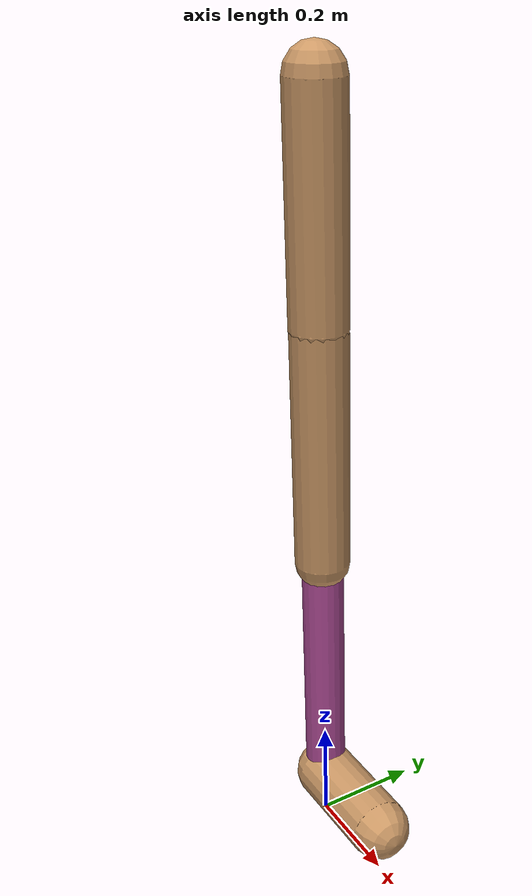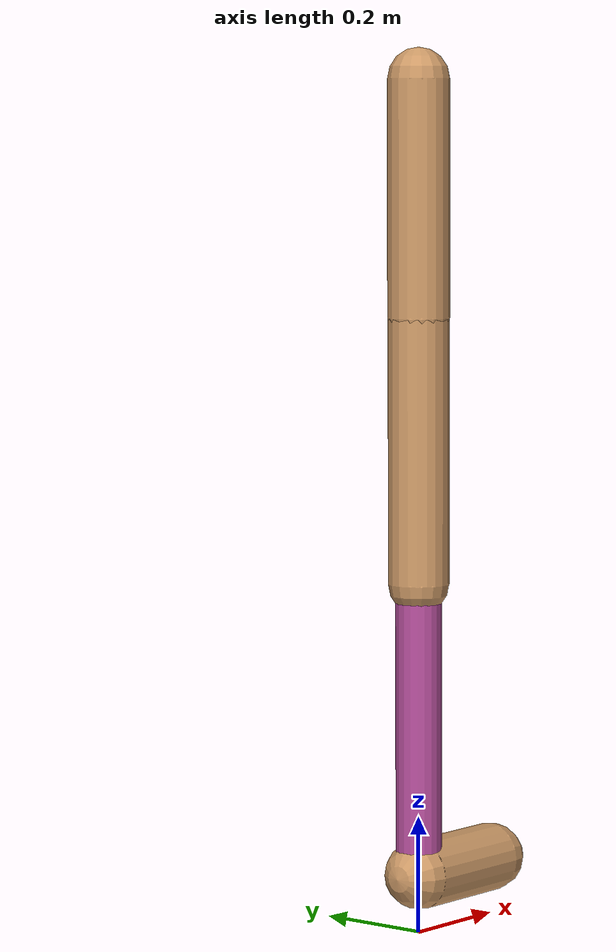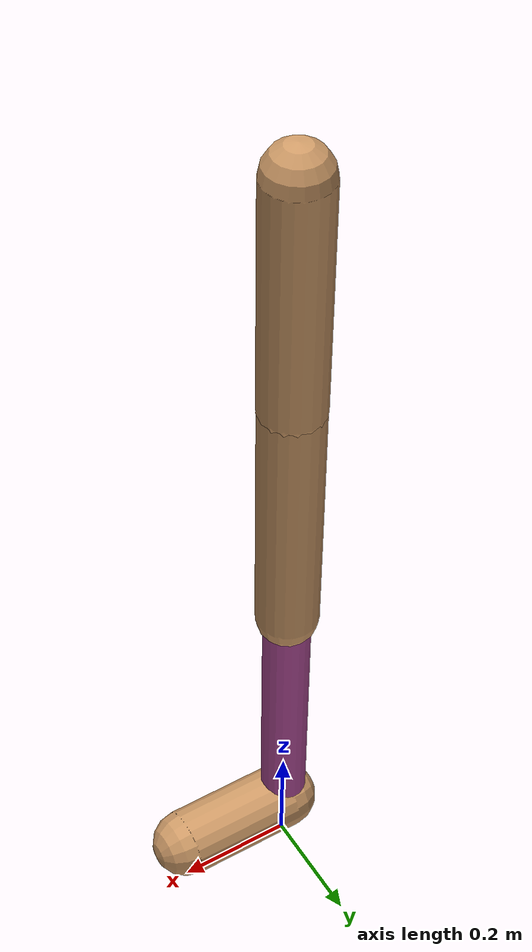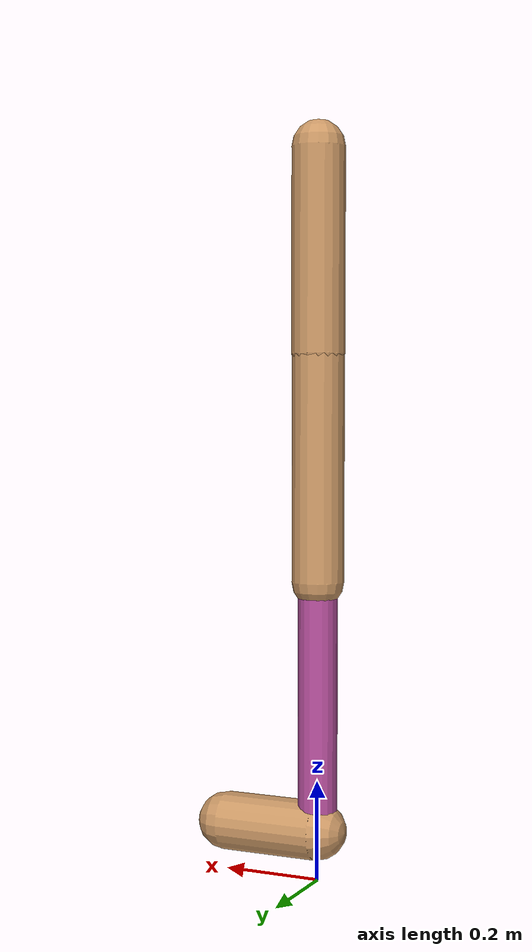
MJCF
<?xml version="1.0" encoding="utf-8"?>
<mujoco model="walker2d">
	<compiler angle="degree" coordinate="global" inertiafromgeom="true"></compiler>
	<default>
		<joint armature="0.01" damping="0.10389479181180557" limited="true"></joint>
		<geom conaffinity="0" condim="3" contype="1" density="1000" friction="0.7772651095628111 0.09415161328237126 0.09996005232394228" rgba="0.8 0.6 .4 1"></geom>
	</default>
	<option integrator="RK4" timestep="0.002"></option>
	<worldbody>
		<body name="torso">
			<joint armature="0" axis="1 0 0" damping="0.0" limited="false" name="ignorex" pos="0 0 0" stiffness="0.0" type="slide"></joint>
			<joint armature="0" axis="0 0 1" damping="0.0" limited="false" name="ignorez" pos="0 0 0" ref="1.25" stiffness="0.0" type="slide"></joint>
			<joint armature="0" axis="0 1 0" damping="0.0" limited="false" name="ignorey" pos="0 0 0" stiffness="0.0" type="hinge"></joint>
			<geom fromto="0 0 1.45 0 0 1.05" name="torso_geom" size="0.0527481763676865" type="capsule"></geom>
			<body name="thigh">
				<joint axis="0 -1 0" name="thigh_joint" pos="0 0 1.05" range="-150 0" type="hinge"></joint>
				<geom fromto="0 0 1.05 0 0 0.6" name="thigh_geom" size="0.051953884385022624" type="capsule"></geom>
				<body name="leg">
					<joint axis="0 -1 0" name="leg_joint" pos="0 0 0.6" range="-150 0" type="hinge"></joint>
					<geom fromto="0 0 0.6 0 0 0.1" name="leg_geom" size="0.03814794470192848" type="capsule"></geom>
					<body name="foot">
						<joint axis="0 -1 0" name="foot_joint" pos="0 0 0.1" range="-45 45" type="hinge"></joint>
						<geom fromto="-0.0 0 0.1 0.2 0 0.1" name="foot_geom" size="0.058753549426749256" type="capsule"></geom>
					</body>
				</body>
			</body>
			<body name="thigh_left">
				<joint axis="0 -1 0" name="thigh_left_joint" pos="0 0 1.05" range="-150 0" type="hinge"></joint>
				<geom fromto="0 0 1.05 0 0 0.6" name="thigh_left_geom" rgba=".7 .3 .6 1" size="0.04719921399804896" type="capsule"></geom>
				<body name="leg_left">
					<joint axis="0 -1 0" name="leg_left_joint" pos="0 0 0.6" range="-150 0" type="hinge"></joint>
					<geom fromto="0 0 0.6 0 0 0.1" name="leg_left_geom" rgba=".7 .3 .6 1" size="0.039475468402723125" type="capsule"></geom>
					<body name="foot_left">
						<joint axis="0 -1 0" name="foot_left_joint" pos="0 0 0.1" range="-45 45" type="hinge"></joint>
						<geom fromto="-0.0 0 0.1 0.2 0 0.1" name="foot_left_geom" rgba=".7 .3 .6 1" size="0.05504805144806063" type="capsule"></geom>
					</body>
				</body>
			</body>
		</body>
	</worldbody>
	<actuator>
		<motor ctrllimited="true" ctrlrange="-1.0 1.0" gear="100" joint="thigh_joint"></motor>
		<motor ctrllimited="true" ctrlrange="-1.0 1.0" gear="100" joint="leg_joint"></motor>
		<motor ctrllimited="true" ctrlrange="-1.0 1.0" gear="100" joint="foot_joint"></motor>
		<motor ctrllimited="true" ctrlrange="-1.0 1.0" gear="100" joint="thigh_left_joint"></motor>
		<motor ctrllimited="true" ctrlrange="-1.0 1.0" gear="100" joint="leg_left_joint"></motor>
		<motor ctrllimited="true" ctrlrange="-1.0 1.0" gear="100" joint="foot_left_joint"></motor>
	</actuator>
</mujoco>
